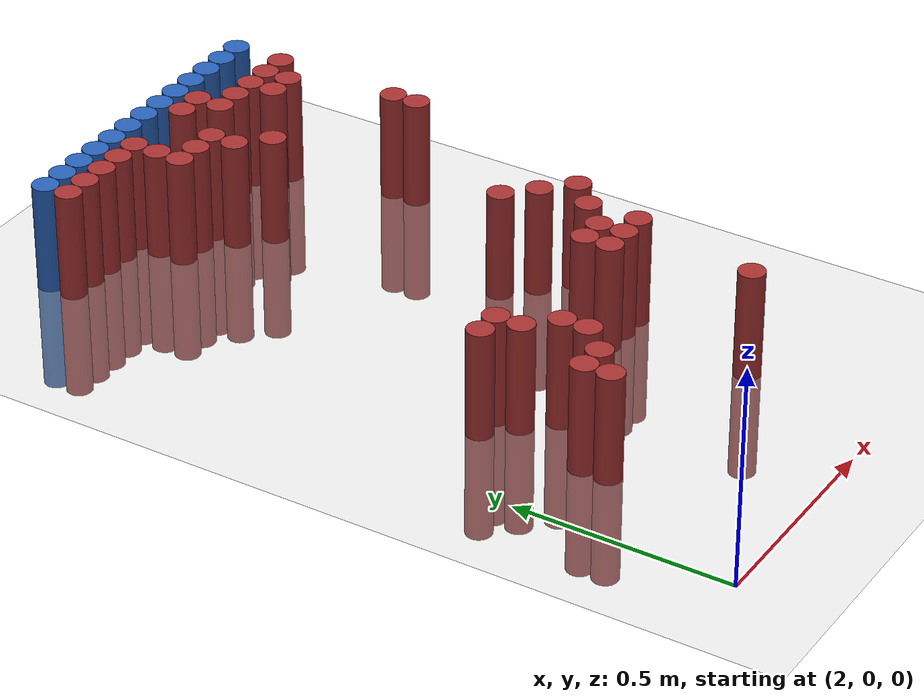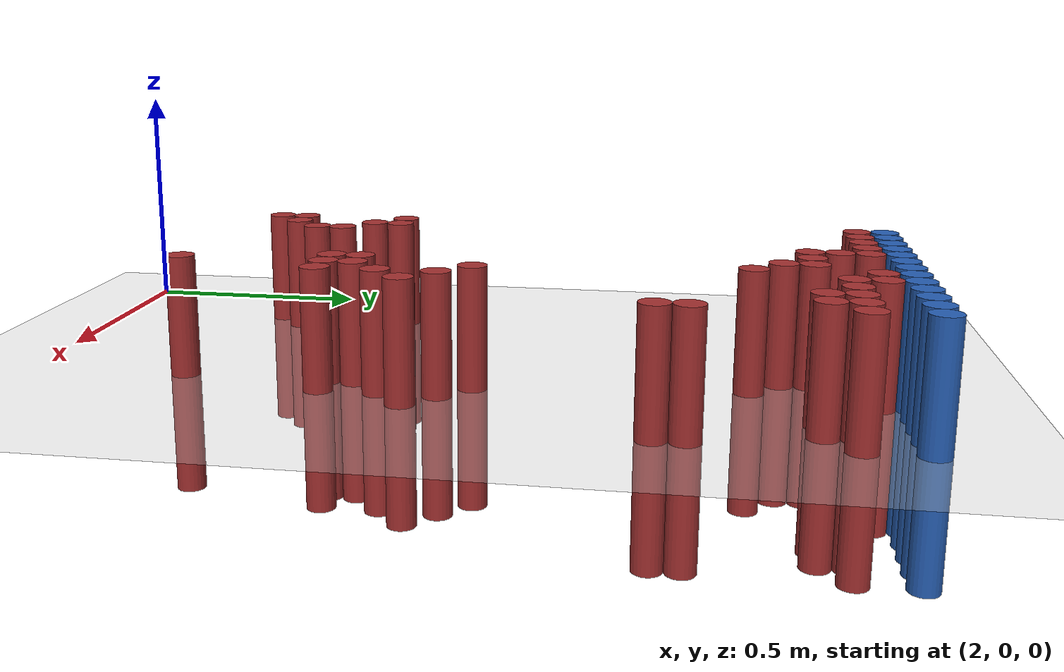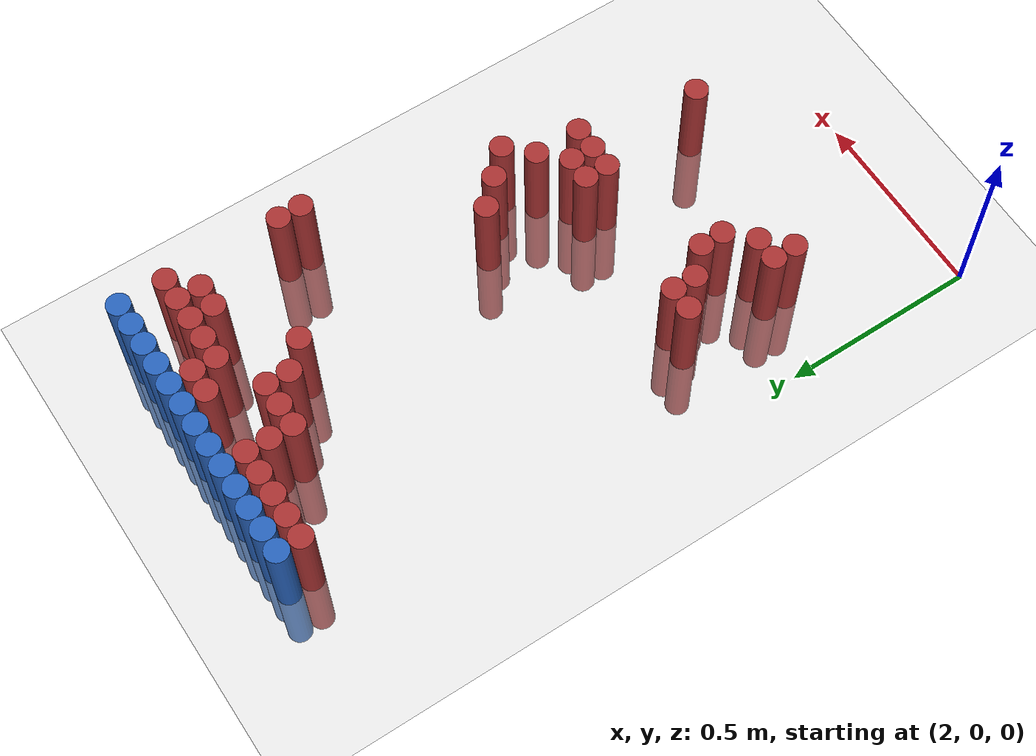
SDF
<sdf version="1.6">
 <world name="default">
  <model name="ground_plane">
   <static>1</static>
   <link name="link">
    <collision name="collision">
     <geometry><plane><normal>0 0 1</normal><size>100 100</size></plane></geometry>
     <surface><friction><ode><mu>100</mu><mu2>50</mu2></ode></friction></surface>
    </collision>
    <visual name="visual">
     <cast_shadows>0</cast_shadows>
     <geometry><plane><normal>0 0 1</normal><size>100 100</size></plane></geometry>
     <material>
      <script><uri>file://media/materials/scripts/gazebo.material</uri><name>Gazebo/Grey</name></script>
     </material>
    </visual>
   </link>
  </model>
  <model name="unit_cylinder_97">
   <static>1</static>
   <pose>2.190000 1.770000 0.000000 0.000000 0.000000 0.000000</pose>
   <link name="link">
    <inertial>
     <mass>1</mass>
     <inertia><ixx>0.145833</ixx><ixy>0</ixy><ixz>0</ixz><iyy>0.145833</iyy><iyz>0</iyz><izz>0.125</izz></inertia>
    </inertial>
    <collision name="collision">
     <geometry><cylinder><radius>0.030000</radius><length>0.5</length></cylinder></geometry>
    </collision>
    <visual name="visual">
     <geometry><cylinder><radius>0.030000</radius><length>0.5</length></cylinder></geometry>
     <material>
      <ambient>0.152000 0.379000 0.720000 1</ambient>
      <diffuse>0.152000 0.379000 0.720000 1</diffuse>
     </material>
     <material>
      <script><name>Gazebo/Grey</name><uri>file://media/materials/scripts/gazebo.material</uri></script>
     </material>
    </visual>
   </link>
  </model>
  <model name="unit_cylinder_98">
   <static>1</static>
   <pose>2.250000 1.770000 0.000000 0.000000 0.000000 0.000000</pose>
   <link name="link">
    <inertial>
     <mass>1</mass>
     <inertia><ixx>0.145833</ixx><ixy>0</ixy><ixz>0</ixz><iyy>0.145833</iyy><iyz>0</iyz><izz>0.125</izz></inertia>
    </inertial>
    <collision name="collision">
     <geometry><cylinder><radius>0.030000</radius><length>0.5</length></cylinder></geometry>
    </collision>
    <visual name="visual">
     <geometry><cylinder><radius>0.030000</radius><length>0.5</length></cylinder></geometry>
     <material>
      <ambient>0.152000 0.379000 0.720000 1</ambient>
      <diffuse>0.152000 0.379000 0.720000 1</diffuse>
     </material>
     <material>
      <script><name>Gazebo/Grey</name><uri>file://media/materials/scripts/gazebo.material</uri></script>
     </material>
    </visual>
   </link>
  </model>
  <model name="unit_cylinder_99">
   <static>1</static>
   <pose>2.310000 1.770000 0.000000 0.000000 0.000000 0.000000</pose>
   <link name="link">
    <inertial>
     <mass>1</mass>
     <inertia><ixx>0.145833</ixx><ixy>0</ixy><ixz>0</ixz><iyy>0.145833</iyy><iyz>0</iyz><izz>0.125</izz></inertia>
    </inertial>
    <collision name="collision">
     <geometry><cylinder><radius>0.030000</radius><length>0.5</length></cylinder></geometry>
    </collision>
    <visual name="visual">
     <geometry><cylinder><radius>0.030000</radius><length>0.5</length></cylinder></geometry>
     <material>
      <ambient>0.152000 0.379000 0.720000 1</ambient>
      <diffuse>0.152000 0.379000 0.720000 1</diffuse>
     </material>
     <material>
      <script><name>Gazebo/Grey</name><uri>file://media/materials/scripts/gazebo.material</uri></script>
     </material>
    </visual>
   </link>
  </model>
  <model name="unit_cylinder_100">
   <static>1</static>
   <pose>2.370000 1.770000 0.000000 0.000000 0.000000 0.000000</pose>
   <link name="link">
    <inertial>
     <mass>1</mass>
     <inertia><ixx>0.145833</ixx><ixy>0</ixy><ixz>0</ixz><iyy>0.145833</iyy><iyz>0</iyz><izz>0.125</izz></inertia>
    </inertial>
    <collision name="collision">
     <geometry><cylinder><radius>0.030000</radius><length>0.5</length></cylinder></geometry>
    </collision>
    <visual name="visual">
     <geometry><cylinder><radius>0.030000</radius><length>0.5</length></cylinder></geometry>
     <material>
      <ambient>0.152000 0.379000 0.720000 1</ambient>
      <diffuse>0.152000 0.379000 0.720000 1</diffuse>
     </material>
     <material>
      <script><name>Gazebo/Grey</name><uri>file://media/materials/scripts/gazebo.material</uri></script>
     </material>
    </visual>
   </link>
  </model>
  <model name="unit_cylinder_101">
   <static>1</static>
   <pose>2.430000 1.770000 0.000000 0.000000 0.000000 0.000000</pose>
   <link name="link">
    <inertial>
     <mass>1</mass>
     <inertia><ixx>0.145833</ixx><ixy>0</ixy><ixz>0</ixz><iyy>0.145833</iyy><iyz>0</iyz><izz>0.125</izz></inertia>
    </inertial>
    <collision name="collision">
     <geometry><cylinder><radius>0.030000</radius><length>0.5</length></cylinder></geometry>
    </collision>
    <visual name="visual">
     <geometry><cylinder><radius>0.030000</radius><length>0.5</length></cylinder></geometry>
     <material>
      <ambient>0.152000 0.379000 0.720000 1</ambient>
      <diffuse>0.152000 0.379000 0.720000 1</diffuse>
     </material>
     <material>
      <script><name>Gazebo/Grey</name><uri>file://media/materials/scripts/gazebo.material</uri></script>
     </material>
    </visual>
   </link>
  </model>
  <model name="unit_cylinder_102">
   <static>1</static>
   <pose>2.490000 1.770000 0.000000 0.000000 0.000000 0.000000</pose>
   <link name="link">
    <inertial>
     <mass>1</mass>
     <inertia><ixx>0.145833</ixx><ixy>0</ixy><ixz>0</ixz><iyy>0.145833</iyy><iyz>0</iyz><izz>0.125</izz></inertia>
    </inertial>
    <collision name="collision">
     <geometry><cylinder><radius>0.030000</radius><length>0.5</length></cylinder></geometry>
    </collision>
    <visual name="visual">
     <geometry><cylinder><radius>0.030000</radius><length>0.5</length></cylinder></geometry>
     <material>
      <ambient>0.152000 0.379000 0.720000 1</ambient>
      <diffuse>0.152000 0.379000 0.720000 1</diffuse>
     </material>
     <material>
      <script><name>Gazebo/Grey</name><uri>file://media/materials/scripts/gazebo.material</uri></script>
     </material>
    </visual>
   </link>
  </model>
  <model name="unit_cylinder_103">
   <static>1</static>
   <pose>2.550000 1.770000 0.000000 0.000000 0.000000 0.000000</pose>
   <link name="link">
    <inertial>
     <mass>1</mass>
     <inertia><ixx>0.145833</ixx><ixy>0</ixy><ixz>0</ixz><iyy>0.145833</iyy><iyz>0</iyz><izz>0.125</izz></inertia>
    </inertial>
    <collision name="collision">
     <geometry><cylinder><radius>0.030000</radius><length>0.5</length></cylinder></geometry>
    </collision>
    <visual name="visual">
     <geometry><cylinder><radius>0.030000</radius><length>0.5</length></cylinder></geometry>
     <material>
      <ambient>0.152000 0.379000 0.720000 1</ambient>
      <diffuse>0.152000 0.379000 0.720000 1</diffuse>
     </material>
     <material>
      <script><name>Gazebo/Grey</name><uri>file://media/materials/scripts/gazebo.material</uri></script>
     </material>
    </visual>
   </link>
  </model>
  <model name="unit_cylinder_104">
   <static>1</static>
   <pose>2.610000 1.770000 0.000000 0.000000 0.000000 0.000000</pose>
   <link name="link">
    <inertial>
     <mass>1</mass>
     <inertia><ixx>0.145833</ixx><ixy>0</ixy><ixz>0</ixz><iyy>0.145833</iyy><iyz>0</iyz><izz>0.125</izz></inertia>
    </inertial>
    <collision name="collision">
     <geometry><cylinder><radius>0.030000</radius><length>0.5</length></cylinder></geometry>
    </collision>
    <visual name="visual">
     <geometry><cylinder><radius>0.030000</radius><length>0.5</length></cylinder></geometry>
     <material>
      <ambient>0.152000 0.379000 0.720000 1</ambient>
      <diffuse>0.152000 0.379000 0.720000 1</diffuse>
     </material>
     <material>
      <script><name>Gazebo/Grey</name><uri>file://media/materials/scripts/gazebo.material</uri></script>
     </material>
    </visual>
   </link>
  </model>
  <model name="unit_cylinder_105">
   <static>1</static>
   <pose>2.670000 1.770000 0.000000 0.000000 0.000000 0.000000</pose>
   <link name="link">
    <inertial>
     <mass>1</mass>
     <inertia><ixx>0.145833</ixx><ixy>0</ixy><ixz>0</ixz><iyy>0.145833</iyy><iyz>0</iyz><izz>0.125</izz></inertia>
    </inertial>
    <collision name="collision">
     <geometry><cylinder><radius>0.030000</radius><length>0.5</length></cylinder></geometry>
    </collision>
    <visual name="visual">
     <geometry><cylinder><radius>0.030000</radius><length>0.5</length></cylinder></geometry>
     <material>
      <ambient>0.152000 0.379000 0.720000 1</ambient>
      <diffuse>0.152000 0.379000 0.720000 1</diffuse>
     </material>
     <material>
      <script><name>Gazebo/Grey</name><uri>file://media/materials/scripts/gazebo.material</uri></script>
     </material>
    </visual>
   </link>
  </model>
  <model name="unit_cylinder_106">
   <static>1</static>
   <pose>2.730000 1.770000 0.000000 0.000000 0.000000 0.000000</pose>
   <link name="link">
    <inertial>
     <mass>1</mass>
     <inertia><ixx>0.145833</ixx><ixy>0</ixy><ixz>0</ixz><iyy>0.145833</iyy><iyz>0</iyz><izz>0.125</izz></inertia>
    </inertial>
    <collision name="collision">
     <geometry><cylinder><radius>0.030000</radius><length>0.5</length></cylinder></geometry>
    </collision>
    <visual name="visual">
     <geometry><cylinder><radius>0.030000</radius><length>0.5</length></cylinder></geometry>
     <material>
      <ambient>0.152000 0.379000 0.720000 1</ambient>
      <diffuse>0.152000 0.379000 0.720000 1</diffuse>
     </material>
     <material>
      <script><name>Gazebo/Grey</name><uri>file://media/materials/scripts/gazebo.material</uri></script>
     </material>
    </visual>
   </link>
  </model>
  <model name="unit_cylinder_107">
   <static>1</static>
   <pose>2.790000 1.770000 0.000000 0.000000 0.000000 0.000000</pose>
   <link name="link">
    <inertial>
     <mass>1</mass>
     <inertia><ixx>0.145833</ixx><ixy>0</ixy><ixz>0</ixz><iyy>0.145833</iyy><iyz>0</iyz><izz>0.125</izz></inertia>
    </inertial>
    <collision name="collision">
     <geometry><cylinder><radius>0.030000</radius><length>0.5</length></cylinder></geometry>
    </collision>
    <visual name="visual">
     <geometry><cylinder><radius>0.030000</radius><length>0.5</length></cylinder></geometry>
     <material>
      <ambient>0.152000 0.379000 0.720000 1</ambient>
      <diffuse>0.152000 0.379000 0.720000 1</diffuse>
     </material>
     <material>
      <script><name>Gazebo/Grey</name><uri>file://media/materials/scripts/gazebo.material</uri></script>
     </material>
    </visual>
   </link>
  </model>
  <model name="unit_cylinder_108">
   <static>1</static>
   <pose>2.850000 1.770000 0.000000 0.000000 0.000000 0.000000</pose>
   <link name="link">
    <inertial>
     <mass>1</mass>
     <inertia><ixx>0.145833</ixx><ixy>0</ixy><ixz>0</ixz><iyy>0.145833</iyy><iyz>0</iyz><izz>0.125</izz></inertia>
    </inertial>
    <collision name="collision">
     <geometry><cylinder><radius>0.030000</radius><length>0.5</length></cylinder></geometry>
    </collision>
    <visual name="visual">
     <geometry><cylinder><radius>0.030000</radius><length>0.5</length></cylinder></geometry>
     <material>
      <ambient>0.152000 0.379000 0.720000 1</ambient>
      <diffuse>0.152000 0.379000 0.720000 1</diffuse>
     </material>
     <material>
      <script><name>Gazebo/Grey</name><uri>file://media/materials/scripts/gazebo.material</uri></script>
     </material>
    </visual>
   </link>
  </model>
  <model name="unit_cylinder_109">
   <static>1</static>
   <pose>2.910000 1.770000 0.000000 0.000000 0.000000 0.000000</pose>
   <link name="link">
    <inertial>
     <mass>1</mass>
     <inertia><ixx>0.145833</ixx><ixy>0</ixy><ixz>0</ixz><iyy>0.145833</iyy><iyz>0</iyz><izz>0.125</izz></inertia>
    </inertial>
    <collision name="collision">
     <geometry><cylinder><radius>0.030000</radius><length>0.5</length></cylinder></geometry>
    </collision>
    <visual name="visual">
     <geometry><cylinder><radius>0.030000</radius><length>0.5</length></cylinder></geometry>
     <material>
      <ambient>0.152000 0.379000 0.720000 1</ambient>
      <diffuse>0.152000 0.379000 0.720000 1</diffuse>
     </material>
     <material>
      <script><name>Gazebo/Grey</name><uri>file://media/materials/scripts/gazebo.material</uri></script>
     </material>
    </visual>
   </link>
  </model>
  <model name="unit_cylinder_127">
   <static>1</static>
   <pose>2.190000 1.710000 0.000000 0.000000 0.000000 0.000000</pose>
   <link name="link">
    <inertial>
     <mass>1</mass>
     <inertia><ixx>0.145833</ixx><ixy>0</ixy><ixz>0</ixz><iyy>0.145833</iyy><iyz>0</iyz><izz>0.125</izz></inertia>
    </inertial>
    <collision name="collision">
     <geometry><cylinder><radius>0.030000</radius><length>0.5</length></cylinder></geometry>
    </collision>
    <visual name="visual">
     <geometry><cylinder><radius>0.030000</radius><length>0.5</length></cylinder></geometry>
     <material>
      <ambient>0.648000 0.192000 0.192000 1</ambient>
      <diffuse>0.648000 0.192000 0.192000 1</diffuse>
     </material>
     <material>
      <script><name>Gazebo/Grey</name><uri>file://media/materials/scripts/gazebo.material</uri></script>
     </material>
    </visual>
   </link>
  </model>
  <model name="unit_cylinder_128">
   <static>1</static>
   <pose>2.250000 1.710000 0.000000 0.000000 0.000000 0.000000</pose>
   <link name="link">
    <inertial>
     <mass>1</mass>
     <inertia><ixx>0.145833</ixx><ixy>0</ixy><ixz>0</ixz><iyy>0.145833</iyy><iyz>0</iyz><izz>0.125</izz></inertia>
    </inertial>
    <collision name="collision">
     <geometry><cylinder><radius>0.030000</radius><length>0.5</length></cylinder></geometry>
    </collision>
    <visual name="visual">
     <geometry><cylinder><radius>0.030000</radius><length>0.5</length></cylinder></geometry>
     <material>
      <ambient>0.648000 0.192000 0.192000 1</ambient>
      <diffuse>0.648000 0.192000 0.192000 1</diffuse>
     </material>
     <material>
      <script><name>Gazebo/Grey</name><uri>file://media/materials/scripts/gazebo.material</uri></script>
     </material>
    </visual>
   </link>
  </model>
  <model name="unit_cylinder_129">
   <static>1</static>
   <pose>2.310000 1.710000 0.000000 0.000000 0.000000 0.000000</pose>
   <link name="link">
    <inertial>
     <mass>1</mass>
     <inertia><ixx>0.145833</ixx><ixy>0</ixy><ixz>0</ixz><iyy>0.145833</iyy><iyz>0</iyz><izz>0.125</izz></inertia>
    </inertial>
    <collision name="collision">
     <geometry><cylinder><radius>0.030000</radius><length>0.5</length></cylinder></geometry>
    </collision>
    <visual name="visual">
     <geometry><cylinder><radius>0.030000</radius><length>0.5</length></cylinder></geometry>
     <material>
      <ambient>0.648000 0.192000 0.192000 1</ambient>
      <diffuse>0.648000 0.192000 0.192000 1</diffuse>
     </material>
     <material>
      <script><name>Gazebo/Grey</name><uri>file://media/materials/scripts/gazebo.material</uri></script>
     </material>
    </visual>
   </link>
  </model>
  <model name="unit_cylinder_130">
   <static>1</static>
   <pose>2.370000 1.710000 0.000000 0.000000 0.000000 0.000000</pose>
   <link name="link">
    <inertial>
     <mass>1</mass>
     <inertia><ixx>0.145833</ixx><ixy>0</ixy><ixz>0</ixz><iyy>0.145833</iyy><iyz>0</iyz><izz>0.125</izz></inertia>
    </inertial>
    <collision name="collision">
     <geometry><cylinder><radius>0.030000</radius><length>0.5</length></cylinder></geometry>
    </collision>
    <visual name="visual">
     <geometry><cylinder><radius>0.030000</radius><length>0.5</length></cylinder></geometry>
     <material>
      <ambient>0.648000 0.192000 0.192000 1</ambient>
      <diffuse>0.648000 0.192000 0.192000 1</diffuse>
     </material>
     <material>
      <script><name>Gazebo/Grey</name><uri>file://media/materials/scripts/gazebo.material</uri></script>
     </material>
    </visual>
   </link>
  </model>
  <model name="unit_cylinder_131">
   <static>1</static>
   <pose>2.430000 1.710000 0.000000 0.000000 0.000000 0.000000</pose>
   <link name="link">
    <inertial>
     <mass>1</mass>
     <inertia><ixx>0.145833</ixx><ixy>0</ixy><ixz>0</ixz><iyy>0.145833</iyy><iyz>0</iyz><izz>0.125</izz></inertia>
    </inertial>
    <collision name="collision">
     <geometry><cylinder><radius>0.030000</radius><length>0.5</length></cylinder></geometry>
    </collision>
    <visual name="visual">
     <geometry><cylinder><radius>0.030000</radius><length>0.5</length></cylinder></geometry>
     <material>
      <ambient>0.648000 0.192000 0.192000 1</ambient>
      <diffuse>0.648000 0.192000 0.192000 1</diffuse>
     </material>
     <material>
      <script><name>Gazebo/Grey</name><uri>file://media/materials/scripts/gazebo.material</uri></script>
     </material>
    </visual>
   </link>
  </model>
  <model name="unit_cylinder_132">
   <static>1</static>
   <pose>2.610000 1.710000 0.000000 0.000000 0.000000 0.000000</pose>
   <link name="link">
    <inertial>
     <mass>1</mass>
     <inertia><ixx>0.145833</ixx><ixy>0</ixy><ixz>0</ixz><iyy>0.145833</iyy><iyz>0</iyz><izz>0.125</izz></inertia>
    </inertial>
    <collision name="collision">
     <geometry><cylinder><radius>0.030000</radius><length>0.5</length></cylinder></geometry>
    </collision>
    <visual name="visual">
     <geometry><cylinder><radius>0.030000</radius><length>0.5</length></cylinder></geometry>
     <material>
      <ambient>0.648000 0.192000 0.192000 1</ambient>
      <diffuse>0.648000 0.192000 0.192000 1</diffuse>
     </material>
     <material>
      <script><name>Gazebo/Grey</name><uri>file://media/materials/scripts/gazebo.material</uri></script>
     </material>
    </visual>
   </link>
  </model>
  <model name="unit_cylinder_133">
   <static>1</static>
   <pose>2.670000 1.710000 0.000000 0.000000 0.000000 0.000000</pose>
   <link name="link">
    <inertial>
     <mass>1</mass>
     <inertia><ixx>0.145833</ixx><ixy>0</ixy><ixz>0</ixz><iyy>0.145833</iyy><iyz>0</iyz><izz>0.125</izz></inertia>
    </inertial>
    <collision name="collision">
     <geometry><cylinder><radius>0.030000</radius><length>0.5</length></cylinder></geometry>
    </collision>
    <visual name="visual">
     <geometry><cylinder><radius>0.030000</radius><length>0.5</length></cylinder></geometry>
     <material>
      <ambient>0.648000 0.192000 0.192000 1</ambient>
      <diffuse>0.648000 0.192000 0.192000 1</diffuse>
     </material>
     <material>
      <script><name>Gazebo/Grey</name><uri>file://media/materials/scripts/gazebo.material</uri></script>
     </material>
    </visual>
   </link>
  </model>
  <model name="unit_cylinder_143">
   <static>1</static>
   <pose>2.430000 1.650000 0.000000 0.000000 0.000000 0.000000</pose>
   <link name="link">
    <inertial>
     <mass>1</mass>
     <inertia><ixx>0.145833</ixx><ixy>0</ixy><ixz>0</ixz><iyy>0.145833</iyy><iyz>0</iyz><izz>0.125</izz></inertia>
    </inertial>
    <collision name="collision">
     <geometry><cylinder><radius>0.030000</radius><length>0.5</length></cylinder></geometry>
    </collision>
    <visual name="visual">
     <geometry><cylinder><radius>0.030000</radius><length>0.5</length></cylinder></geometry>
     <material>
      <ambient>0.648000 0.192000 0.192000 1</ambient>
      <diffuse>0.648000 0.192000 0.192000 1</diffuse>
     </material>
     <material>
      <script><name>Gazebo/Grey</name><uri>file://media/materials/scripts/gazebo.material</uri></script>
     </material>
    </visual>
   </link>
  </model>
  <model name="unit_cylinder_144">
   <static>1</static>
   <pose>2.670000 1.650000 0.000000 0.000000 0.000000 0.000000</pose>
   <link name="link">
    <inertial>
     <mass>1</mass>
     <inertia><ixx>0.145833</ixx><ixy>0</ixy><ixz>0</ixz><iyy>0.145833</iyy><iyz>0</iyz><izz>0.125</izz></inertia>
    </inertial>
    <collision name="collision">
     <geometry><cylinder><radius>0.030000</radius><length>0.5</length></cylinder></geometry>
    </collision>
    <visual name="visual">
     <geometry><cylinder><radius>0.030000</radius><length>0.5</length></cylinder></geometry>
     <material>
      <ambient>0.648000 0.192000 0.192000 1</ambient>
      <diffuse>0.648000 0.192000 0.192000 1</diffuse>
     </material>
     <material>
      <script><name>Gazebo/Grey</name><uri>file://media/materials/scripts/gazebo.material</uri></script>
     </material>
    </visual>
   </link>
  </model>
  <model name="unit_cylinder_145">
   <static>1</static>
   <pose>2.730000 1.650000 0.000000 0.000000 0.000000 0.000000</pose>
   <link name="link">
    <inertial>
     <mass>1</mass>
     <inertia><ixx>0.145833</ixx><ixy>0</ixy><ixz>0</ixz><iyy>0.145833</iyy><iyz>0</iyz><izz>0.125</izz></inertia>
    </inertial>
    <collision name="collision">
     <geometry><cylinder><radius>0.030000</radius><length>0.5</length></cylinder></geometry>
    </collision>
    <visual name="visual">
     <geometry><cylinder><radius>0.030000</radius><length>0.5</length></cylinder></geometry>
     <material>
      <ambient>0.648000 0.192000 0.192000 1</ambient>
      <diffuse>0.648000 0.192000 0.192000 1</diffuse>
     </material>
     <material>
      <script><name>Gazebo/Grey</name><uri>file://media/materials/scripts/gazebo.material</uri></script>
     </material>
    </visual>
   </link>
  </model>
  <model name="unit_cylinder_146">
   <static>1</static>
   <pose>2.790000 1.650000 0.000000 0.000000 0.000000 0.000000</pose>
   <link name="link">
    <inertial>
     <mass>1</mass>
     <inertia><ixx>0.145833</ixx><ixy>0</ixy><ixz>0</ixz><iyy>0.145833</iyy><iyz>0</iyz><izz>0.125</izz></inertia>
    </inertial>
    <collision name="collision">
     <geometry><cylinder><radius>0.030000</radius><length>0.5</length></cylinder></geometry>
    </collision>
    <visual name="visual">
     <geometry><cylinder><radius>0.030000</radius><length>0.5</length></cylinder></geometry>
     <material>
      <ambient>0.648000 0.192000 0.192000 1</ambient>
      <diffuse>0.648000 0.192000 0.192000 1</diffuse>
     </material>
     <material>
      <script><name>Gazebo/Grey</name><uri>file://media/materials/scripts/gazebo.material</uri></script>
     </material>
    </visual>
   </link>
  </model>
  <model name="unit_cylinder_147">
   <static>1</static>
   <pose>2.850000 1.650000 0.000000 0.000000 0.000000 0.000000</pose>
   <link name="link">
    <inertial>
     <mass>1</mass>
     <inertia><ixx>0.145833</ixx><ixy>0</ixy><ixz>0</ixz><iyy>0.145833</iyy><iyz>0</iyz><izz>0.125</izz></inertia>
    </inertial>
    <collision name="collision">
     <geometry><cylinder><radius>0.030000</radius><length>0.5</length></cylinder></geometry>
    </collision>
    <visual name="visual">
     <geometry><cylinder><radius>0.030000</radius><length>0.5</length></cylinder></geometry>
     <material>
      <ambient>0.648000 0.192000 0.192000 1</ambient>
      <diffuse>0.648000 0.192000 0.192000 1</diffuse>
     </material>
     <material>
      <script><name>Gazebo/Grey</name><uri>file://media/materials/scripts/gazebo.material</uri></script>
     </material>
    </visual>
   </link>
  </model>
  <model name="unit_cylinder_148">
   <static>1</static>
   <pose>2.910000 1.650000 0.000000 0.000000 0.000000 0.000000</pose>
   <link name="link">
    <inertial>
     <mass>1</mass>
     <inertia><ixx>0.145833</ixx><ixy>0</ixy><ixz>0</ixz><iyy>0.145833</iyy><iyz>0</iyz><izz>0.125</izz></inertia>
    </inertial>
    <collision name="collision">
     <geometry><cylinder><radius>0.030000</radius><length>0.5</length></cylinder></geometry>
    </collision>
    <visual name="visual">
     <geometry><cylinder><radius>0.030000</radius><length>0.5</length></cylinder></geometry>
     <material>
      <ambient>0.648000 0.192000 0.192000 1</ambient>
      <diffuse>0.648000 0.192000 0.192000 1</diffuse>
     </material>
     <material>
      <script><name>Gazebo/Grey</name><uri>file://media/materials/scripts/gazebo.material</uri></script>
     </material>
    </visual>
   </link>
  </model>
  <model name="unit_cylinder_151">
   <static>1</static>
   <pose>2.430000 1.590000 0.000000 0.000000 0.000000 0.000000</pose>
   <link name="link">
    <inertial>
     <mass>1</mass>
     <inertia><ixx>0.145833</ixx><ixy>0</ixy><ixz>0</ixz><iyy>0.145833</iyy><iyz>0</iyz><izz>0.125</izz></inertia>
    </inertial>
    <collision name="collision">
     <geometry><cylinder><radius>0.030000</radius><length>0.5</length></cylinder></geometry>
    </collision>
    <visual name="visual">
     <geometry><cylinder><radius>0.030000</radius><length>0.5</length></cylinder></geometry>
     <material>
      <ambient>0.648000 0.192000 0.192000 1</ambient>
      <diffuse>0.648000 0.192000 0.192000 1</diffuse>
     </material>
     <material>
      <script><name>Gazebo/Grey</name><uri>file://media/materials/scripts/gazebo.material</uri></script>
     </material>
    </visual>
   </link>
  </model>
  <model name="unit_cylinder_152">
   <static>1</static>
   <pose>2.490000 1.590000 0.000000 0.000000 0.000000 0.000000</pose>
   <link name="link">
    <inertial>
     <mass>1</mass>
     <inertia><ixx>0.145833</ixx><ixy>0</ixy><ixz>0</ixz><iyy>0.145833</iyy><iyz>0</iyz><izz>0.125</izz></inertia>
    </inertial>
    <collision name="collision">
     <geometry><cylinder><radius>0.030000</radius><length>0.5</length></cylinder></geometry>
    </collision>
    <visual name="visual">
     <geometry><cylinder><radius>0.030000</radius><length>0.5</length></cylinder></geometry>
     <material>
      <ambient>0.648000 0.192000 0.192000 1</ambient>
      <diffuse>0.648000 0.192000 0.192000 1</diffuse>
     </material>
     <material>
      <script><name>Gazebo/Grey</name><uri>file://media/materials/scripts/gazebo.material</uri></script>
     </material>
    </visual>
   </link>
  </model>
  <model name="unit_cylinder_153">
   <static>1</static>
   <pose>2.550000 1.590000 0.000000 0.000000 0.000000 0.000000</pose>
   <link name="link">
    <inertial>
     <mass>1</mass>
     <inertia><ixx>0.145833</ixx><ixy>0</ixy><ixz>0</ixz><iyy>0.145833</iyy><iyz>0</iyz><izz>0.125</izz></inertia>
    </inertial>
    <collision name="collision">
     <geometry><cylinder><radius>0.030000</radius><length>0.5</length></cylinder></geometry>
    </collision>
    <visual name="visual">
     <geometry><cylinder><radius>0.030000</radius><length>0.5</length></cylinder></geometry>
     <material>
      <ambient>0.648000 0.192000 0.192000 1</ambient>
      <diffuse>0.648000 0.192000 0.192000 1</diffuse>
     </material>
     <material>
      <script><name>Gazebo/Grey</name><uri>file://media/materials/scripts/gazebo.material</uri></script>
     </material>
    </visual>
   </link>
  </model>
  <model name="unit_cylinder_154">
   <static>1</static>
   <pose>2.790000 1.590000 0.000000 0.000000 0.000000 0.000000</pose>
   <link name="link">
    <inertial>
     <mass>1</mass>
     <inertia><ixx>0.145833</ixx><ixy>0</ixy><ixz>0</ixz><iyy>0.145833</iyy><iyz>0</iyz><izz>0.125</izz></inertia>
    </inertial>
    <collision name="collision">
     <geometry><cylinder><radius>0.030000</radius><length>0.5</length></cylinder></geometry>
    </collision>
    <visual name="visual">
     <geometry><cylinder><radius>0.030000</radius><length>0.5</length></cylinder></geometry>
     <material>
      <ambient>0.648000 0.192000 0.192000 1</ambient>
      <diffuse>0.648000 0.192000 0.192000 1</diffuse>
     </material>
     <material>
      <script><name>Gazebo/Grey</name><uri>file://media/materials/scripts/gazebo.material</uri></script>
     </material>
    </visual>
   </link>
  </model>
  <model name="unit_cylinder_155">
   <static>1</static>
   <pose>2.850000 1.590000 0.000000 0.000000 0.000000 0.000000</pose>
   <link name="link">
    <inertial>
     <mass>1</mass>
     <inertia><ixx>0.145833</ixx><ixy>0</ixy><ixz>0</ixz><iyy>0.145833</iyy><iyz>0</iyz><izz>0.125</izz></inertia>
    </inertial>
    <collision name="collision">
     <geometry><cylinder><radius>0.030000</radius><length>0.5</length></cylinder></geometry>
    </collision>
    <visual name="visual">
     <geometry><cylinder><radius>0.030000</radius><length>0.5</length></cylinder></geometry>
     <material>
      <ambient>0.648000 0.192000 0.192000 1</ambient>
      <diffuse>0.648000 0.192000 0.192000 1</diffuse>
     </material>
     <material>
      <script><name>Gazebo/Grey</name><uri>file://media/materials/scripts/gazebo.material</uri></script>
     </material>
    </visual>
   </link>
  </model>
  <model name="unit_cylinder_158">
   <static>1</static>
   <pose>2.550000 1.530000 0.000000 0.000000 0.000000 0.000000</pose>
   <link name="link">
    <inertial>
     <mass>1</mass>
     <inertia><ixx>0.145833</ixx><ixy>0</ixy><ixz>0</ixz><iyy>0.145833</iyy><iyz>0</iyz><izz>0.125</izz></inertia>
    </inertial>
    <collision name="collision">
     <geometry><cylinder><radius>0.030000</radius><length>0.5</length></cylinder></geometry>
    </collision>
    <visual name="visual">
     <geometry><cylinder><radius>0.030000</radius><length>0.5</length></cylinder></geometry>
     <material>
      <ambient>0.648000 0.192000 0.192000 1</ambient>
      <diffuse>0.648000 0.192000 0.192000 1</diffuse>
     </material>
     <material>
      <script><name>Gazebo/Grey</name><uri>file://media/materials/scripts/gazebo.material</uri></script>
     </material>
    </visual>
   </link>
  </model>
  <model name="unit_cylinder_163">
   <static>1</static>
   <pose>2.610000 1.470000 0.000000 0.000000 0.000000 0.000000</pose>
   <link name="link">
    <inertial>
     <mass>1</mass>
     <inertia><ixx>0.145833</ixx><ixy>0</ixy><ixz>0</ixz><iyy>0.145833</iyy><iyz>0</iyz><izz>0.125</izz></inertia>
    </inertial>
    <collision name="collision">
     <geometry><cylinder><radius>0.030000</radius><length>0.5</length></cylinder></geometry>
    </collision>
    <visual name="visual">
     <geometry><cylinder><radius>0.030000</radius><length>0.5</length></cylinder></geometry>
     <material>
      <ambient>0.648000 0.192000 0.192000 1</ambient>
      <diffuse>0.648000 0.192000 0.192000 1</diffuse>
     </material>
     <material>
      <script><name>Gazebo/Grey</name><uri>file://media/materials/scripts/gazebo.material</uri></script>
     </material>
    </visual>
   </link>
  </model>
  <model name="unit_cylinder_168">
   <static>1</static>
   <pose>2.910000 1.350000 0.000000 0.000000 0.000000 0.000000</pose>
   <link name="link">
    <inertial>
     <mass>1</mass>
     <inertia><ixx>0.145833</ixx><ixy>0</ixy><ixz>0</ixz><iyy>0.145833</iyy><iyz>0</iyz><izz>0.125</izz></inertia>
    </inertial>
    <collision name="collision">
     <geometry><cylinder><radius>0.030000</radius><length>0.5</length></cylinder></geometry>
    </collision>
    <visual name="visual">
     <geometry><cylinder><radius>0.030000</radius><length>0.5</length></cylinder></geometry>
     <material>
      <ambient>0.648000 0.192000 0.192000 1</ambient>
      <diffuse>0.648000 0.192000 0.192000 1</diffuse>
     </material>
     <material>
      <script><name>Gazebo/Grey</name><uri>file://media/materials/scripts/gazebo.material</uri></script>
     </material>
    </visual>
   </link>
  </model>
  <model name="unit_cylinder_171">
   <static>1</static>
   <pose>2.910000 1.290000 0.000000 0.000000 0.000000 0.000000</pose>
   <link name="link">
    <inertial>
     <mass>1</mass>
     <inertia><ixx>0.145833</ixx><ixy>0</ixy><ixz>0</ixz><iyy>0.145833</iyy><iyz>0</iyz><izz>0.125</izz></inertia>
    </inertial>
    <collision name="collision">
     <geometry><cylinder><radius>0.030000</radius><length>0.5</length></cylinder></geometry>
    </collision>
    <visual name="visual">
     <geometry><cylinder><radius>0.030000</radius><length>0.5</length></cylinder></geometry>
     <material>
      <ambient>0.648000 0.192000 0.192000 1</ambient>
      <diffuse>0.648000 0.192000 0.192000 1</diffuse>
     </material>
     <material>
      <script><name>Gazebo/Grey</name><uri>file://media/materials/scripts/gazebo.material</uri></script>
     </material>
    </visual>
   </link>
  </model>
  <model name="unit_cylinder_175">
   <static>1</static>
   <pose>2.670000 0.930000 0.000000 0.000000 0.000000 0.000000</pose>
   <link name="link">
    <inertial>
     <mass>1</mass>
     <inertia><ixx>0.145833</ixx><ixy>0</ixy><ixz>0</ixz><iyy>0.145833</iyy><iyz>0</iyz><izz>0.125</izz></inertia>
    </inertial>
    <collision name="collision">
     <geometry><cylinder><radius>0.030000</radius><length>0.5</length></cylinder></geometry>
    </collision>
    <visual name="visual">
     <geometry><cylinder><radius>0.030000</radius><length>0.5</length></cylinder></geometry>
     <material>
      <ambient>0.648000 0.192000 0.192000 1</ambient>
      <diffuse>0.648000 0.192000 0.192000 1</diffuse>
     </material>
     <material>
      <script><name>Gazebo/Grey</name><uri>file://media/materials/scripts/gazebo.material</uri></script>
     </material>
    </visual>
   </link>
  </model>
  <model name="unit_cylinder_176">
   <static>1</static>
   <pose>2.730000 0.870000 0.000000 0.000000 0.000000 0.000000</pose>
   <link name="link">
    <inertial>
     <mass>1</mass>
     <inertia><ixx>0.145833</ixx><ixy>0</ixy><ixz>0</ixz><iyy>0.145833</iyy><iyz>0</iyz><izz>0.125</izz></inertia>
    </inertial>
    <collision name="collision">
     <geometry><cylinder><radius>0.030000</radius><length>0.5</length></cylinder></geometry>
    </collision>
    <visual name="visual">
     <geometry><cylinder><radius>0.030000</radius><length>0.5</length></cylinder></geometry>
     <material>
      <ambient>0.648000 0.192000 0.192000 1</ambient>
      <diffuse>0.648000 0.192000 0.192000 1</diffuse>
     </material>
     <material>
      <script><name>Gazebo/Grey</name><uri>file://media/materials/scripts/gazebo.material</uri></script>
     </material>
    </visual>
   </link>
  </model>
  <model name="unit_cylinder_178">
   <static>1</static>
   <pose>2.790000 0.810000 0.000000 0.000000 0.000000 0.000000</pose>
   <link name="link">
    <inertial>
     <mass>1</mass>
     <inertia><ixx>0.145833</ixx><ixy>0</ixy><ixz>0</ixz><iyy>0.145833</iyy><iyz>0</iyz><izz>0.125</izz></inertia>
    </inertial>
    <collision name="collision">
     <geometry><cylinder><radius>0.030000</radius><length>0.5</length></cylinder></geometry>
    </collision>
    <visual name="visual">
     <geometry><cylinder><radius>0.030000</radius><length>0.5</length></cylinder></geometry>
     <material>
      <ambient>0.648000 0.192000 0.192000 1</ambient>
      <diffuse>0.648000 0.192000 0.192000 1</diffuse>
     </material>
     <material>
      <script><name>Gazebo/Grey</name><uri>file://media/materials/scripts/gazebo.material</uri></script>
     </material>
    </visual>
   </link>
  </model>
  <model name="unit_cylinder_184">
   <static>1</static>
   <pose>2.730000 0.750000 0.000000 0.000000 0.000000 0.000000</pose>
   <link name="link">
    <inertial>
     <mass>1</mass>
     <inertia><ixx>0.145833</ixx><ixy>0</ixy><ixz>0</ixz><iyy>0.145833</iyy><iyz>0</iyz><izz>0.125</izz></inertia>
    </inertial>
    <collision name="collision">
     <geometry><cylinder><radius>0.030000</radius><length>0.5</length></cylinder></geometry>
    </collision>
    <visual name="visual">
     <geometry><cylinder><radius>0.030000</radius><length>0.5</length></cylinder></geometry>
     <material>
      <ambient>0.648000 0.192000 0.192000 1</ambient>
      <diffuse>0.648000 0.192000 0.192000 1</diffuse>
     </material>
     <material>
      <script><name>Gazebo/Grey</name><uri>file://media/materials/scripts/gazebo.material</uri></script>
     </material>
    </visual>
   </link>
  </model>
  <model name="unit_cylinder_186">
   <static>1</static>
   <pose>2.190000 0.690000 0.000000 0.000000 0.000000 0.000000</pose>
   <link name="link">
    <inertial>
     <mass>1</mass>
     <inertia><ixx>0.145833</ixx><ixy>0</ixy><ixz>0</ixz><iyy>0.145833</iyy><iyz>0</iyz><izz>0.125</izz></inertia>
    </inertial>
    <collision name="collision">
     <geometry><cylinder><radius>0.030000</radius><length>0.5</length></cylinder></geometry>
    </collision>
    <visual name="visual">
     <geometry><cylinder><radius>0.030000</radius><length>0.5</length></cylinder></geometry>
     <material>
      <ambient>0.648000 0.192000 0.192000 1</ambient>
      <diffuse>0.648000 0.192000 0.192000 1</diffuse>
     </material>
     <material>
      <script><name>Gazebo/Grey</name><uri>file://media/materials/scripts/gazebo.material</uri></script>
     </material>
    </visual>
   </link>
  </model>
  <model name="unit_cylinder_187">
   <static>1</static>
   <pose>2.250000 0.690000 0.000000 0.000000 0.000000 0.000000</pose>
   <link name="link">
    <inertial>
     <mass>1</mass>
     <inertia><ixx>0.145833</ixx><ixy>0</ixy><ixz>0</ixz><iyy>0.145833</iyy><iyz>0</iyz><izz>0.125</izz></inertia>
    </inertial>
    <collision name="collision">
     <geometry><cylinder><radius>0.030000</radius><length>0.5</length></cylinder></geometry>
    </collision>
    <visual name="visual">
     <geometry><cylinder><radius>0.030000</radius><length>0.5</length></cylinder></geometry>
     <material>
      <ambient>0.648000 0.192000 0.192000 1</ambient>
      <diffuse>0.648000 0.192000 0.192000 1</diffuse>
     </material>
     <material>
      <script><name>Gazebo/Grey</name><uri>file://media/materials/scripts/gazebo.material</uri></script>
     </material>
    </visual>
   </link>
  </model>
  <model name="unit_cylinder_188">
   <static>1</static>
   <pose>2.610000 0.690000 0.000000 0.000000 0.000000 0.000000</pose>
   <link name="link">
    <inertial>
     <mass>1</mass>
     <inertia><ixx>0.145833</ixx><ixy>0</ixy><ixz>0</ixz><iyy>0.145833</iyy><iyz>0</iyz><izz>0.125</izz></inertia>
    </inertial>
    <collision name="collision">
     <geometry><cylinder><radius>0.030000</radius><length>0.5</length></cylinder></geometry>
    </collision>
    <visual name="visual">
     <geometry><cylinder><radius>0.030000</radius><length>0.5</length></cylinder></geometry>
     <material>
      <ambient>0.648000 0.192000 0.192000 1</ambient>
      <diffuse>0.648000 0.192000 0.192000 1</diffuse>
     </material>
     <material>
      <script><name>Gazebo/Grey</name><uri>file://media/materials/scripts/gazebo.material</uri></script>
     </material>
    </visual>
   </link>
  </model>
  <model name="unit_cylinder_189">
   <static>1</static>
   <pose>2.670000 0.690000 0.000000 0.000000 0.000000 0.000000</pose>
   <link name="link">
    <inertial>
     <mass>1</mass>
     <inertia><ixx>0.145833</ixx><ixy>0</ixy><ixz>0</ixz><iyy>0.145833</iyy><iyz>0</iyz><izz>0.125</izz></inertia>
    </inertial>
    <collision name="collision">
     <geometry><cylinder><radius>0.030000</radius><length>0.5</length></cylinder></geometry>
    </collision>
    <visual name="visual">
     <geometry><cylinder><radius>0.030000</radius><length>0.5</length></cylinder></geometry>
     <material>
      <ambient>0.648000 0.192000 0.192000 1</ambient>
      <diffuse>0.648000 0.192000 0.192000 1</diffuse>
     </material>
     <material>
      <script><name>Gazebo/Grey</name><uri>file://media/materials/scripts/gazebo.material</uri></script>
     </material>
    </visual>
   </link>
  </model>
  <model name="unit_cylinder_190">
   <static>1</static>
   <pose>2.250000 0.630000 0.000000 0.000000 0.000000 0.000000</pose>
   <link name="link">
    <inertial>
     <mass>1</mass>
     <inertia><ixx>0.145833</ixx><ixy>0</ixy><ixz>0</ixz><iyy>0.145833</iyy><iyz>0</iyz><izz>0.125</izz></inertia>
    </inertial>
    <collision name="collision">
     <geometry><cylinder><radius>0.030000</radius><length>0.5</length></cylinder></geometry>
    </collision>
    <visual name="visual">
     <geometry><cylinder><radius>0.030000</radius><length>0.5</length></cylinder></geometry>
     <material>
      <ambient>0.648000 0.192000 0.192000 1</ambient>
      <diffuse>0.648000 0.192000 0.192000 1</diffuse>
     </material>
     <material>
      <script><name>Gazebo/Grey</name><uri>file://media/materials/scripts/gazebo.material</uri></script>
     </material>
    </visual>
   </link>
  </model>
  <model name="unit_cylinder_191">
   <static>1</static>
   <pose>2.610000 0.630000 0.000000 0.000000 0.000000 0.000000</pose>
   <link name="link">
    <inertial>
     <mass>1</mass>
     <inertia><ixx>0.145833</ixx><ixy>0</ixy><ixz>0</ixz><iyy>0.145833</iyy><iyz>0</iyz><izz>0.125</izz></inertia>
    </inertial>
    <collision name="collision">
     <geometry><cylinder><radius>0.030000</radius><length>0.5</length></cylinder></geometry>
    </collision>
    <visual name="visual">
     <geometry><cylinder><radius>0.030000</radius><length>0.5</length></cylinder></geometry>
     <material>
      <ambient>0.648000 0.192000 0.192000 1</ambient>
      <diffuse>0.648000 0.192000 0.192000 1</diffuse>
     </material>
     <material>
      <script><name>Gazebo/Grey</name><uri>file://media/materials/scripts/gazebo.material</uri></script>
     </material>
    </visual>
   </link>
  </model>
  <model name="unit_cylinder_192">
   <static>1</static>
   <pose>2.670000 0.630000 0.000000 0.000000 0.000000 0.000000</pose>
   <link name="link">
    <inertial>
     <mass>1</mass>
     <inertia><ixx>0.145833</ixx><ixy>0</ixy><ixz>0</ixz><iyy>0.145833</iyy><iyz>0</iyz><izz>0.125</izz></inertia>
    </inertial>
    <collision name="collision">
     <geometry><cylinder><radius>0.030000</radius><length>0.5</length></cylinder></geometry>
    </collision>
    <visual name="visual">
     <geometry><cylinder><radius>0.030000</radius><length>0.5</length></cylinder></geometry>
     <material>
      <ambient>0.648000 0.192000 0.192000 1</ambient>
      <diffuse>0.648000 0.192000 0.192000 1</diffuse>
     </material>
     <material>
      <script><name>Gazebo/Grey</name><uri>file://media/materials/scripts/gazebo.material</uri></script>
     </material>
    </visual>
   </link>
  </model>
  <model name="unit_cylinder_193">
   <static>1</static>
   <pose>2.730000 0.630000 0.000000 0.000000 0.000000 0.000000</pose>
   <link name="link">
    <inertial>
     <mass>1</mass>
     <inertia><ixx>0.145833</ixx><ixy>0</ixy><ixz>0</ixz><iyy>0.145833</iyy><iyz>0</iyz><izz>0.125</izz></inertia>
    </inertial>
    <collision name="collision">
     <geometry><cylinder><radius>0.030000</radius><length>0.5</length></cylinder></geometry>
    </collision>
    <visual name="visual">
     <geometry><cylinder><radius>0.030000</radius><length>0.5</length></cylinder></geometry>
     <material>
      <ambient>0.648000 0.192000 0.192000 1</ambient>
      <diffuse>0.648000 0.192000 0.192000 1</diffuse>
     </material>
     <material>
      <script><name>Gazebo/Grey</name><uri>file://media/materials/scripts/gazebo.material</uri></script>
     </material>
    </visual>
   </link>
  </model>
  <model name="unit_cylinder_194">
   <static>1</static>
   <pose>2.310000 0.570000 0.000000 0.000000 0.000000 0.000000</pose>
   <link name="link">
    <inertial>
     <mass>1</mass>
     <inertia><ixx>0.145833</ixx><ixy>0</ixy><ixz>0</ixz><iyy>0.145833</iyy><iyz>0</iyz><izz>0.125</izz></inertia>
    </inertial>
    <collision name="collision">
     <geometry><cylinder><radius>0.030000</radius><length>0.5</length></cylinder></geometry>
    </collision>
    <visual name="visual">
     <geometry><cylinder><radius>0.030000</radius><length>0.5</length></cylinder></geometry>
     <material>
      <ambient>0.648000 0.192000 0.192000 1</ambient>
      <diffuse>0.648000 0.192000 0.192000 1</diffuse>
     </material>
     <material>
      <script><name>Gazebo/Grey</name><uri>file://media/materials/scripts/gazebo.material</uri></script>
     </material>
    </visual>
   </link>
  </model>
  <model name="unit_cylinder_196">
   <static>1</static>
   <pose>2.310000 0.510000 0.000000 0.000000 0.000000 0.000000</pose>
   <link name="link">
    <inertial>
     <mass>1</mass>
     <inertia><ixx>0.145833</ixx><ixy>0</ixy><ixz>0</ixz><iyy>0.145833</iyy><iyz>0</iyz><izz>0.125</izz></inertia>
    </inertial>
    <collision name="collision">
     <geometry><cylinder><radius>0.030000</radius><length>0.5</length></cylinder></geometry>
    </collision>
    <visual name="visual">
     <geometry><cylinder><radius>0.030000</radius><length>0.5</length></cylinder></geometry>
     <material>
      <ambient>0.648000 0.192000 0.192000 1</ambient>
      <diffuse>0.648000 0.192000 0.192000 1</diffuse>
     </material>
     <material>
      <script><name>Gazebo/Grey</name><uri>file://media/materials/scripts/gazebo.material</uri></script>
     </material>
    </visual>
   </link>
  </model>
  <model name="unit_cylinder_199">
   <static>1</static>
   <pose>2.190000 0.450000 0.000000 0.000000 0.000000 0.000000</pose>
   <link name="link">
    <inertial>
     <mass>1</mass>
     <inertia><ixx>0.145833</ixx><ixy>0</ixy><ixz>0</ixz><iyy>0.145833</iyy><iyz>0</iyz><izz>0.125</izz></inertia>
    </inertial>
    <collision name="collision">
     <geometry><cylinder><radius>0.030000</radius><length>0.5</length></cylinder></geometry>
    </collision>
    <visual name="visual">
     <geometry><cylinder><radius>0.030000</radius><length>0.5</length></cylinder></geometry>
     <material>
      <ambient>0.648000 0.192000 0.192000 1</ambient>
      <diffuse>0.648000 0.192000 0.192000 1</diffuse>
     </material>
     <material>
      <script><name>Gazebo/Grey</name><uri>file://media/materials/scripts/gazebo.material</uri></script>
     </material>
    </visual>
   </link>
  </model>
  <model name="unit_cylinder_200">
   <static>1</static>
   <pose>2.250000 0.450000 0.000000 0.000000 0.000000 0.000000</pose>
   <link name="link">
    <inertial>
     <mass>1</mass>
     <inertia><ixx>0.145833</ixx><ixy>0</ixy><ixz>0</ixz><iyy>0.145833</iyy><iyz>0</iyz><izz>0.125</izz></inertia>
    </inertial>
    <collision name="collision">
     <geometry><cylinder><radius>0.030000</radius><length>0.5</length></cylinder></geometry>
    </collision>
    <visual name="visual">
     <geometry><cylinder><radius>0.030000</radius><length>0.5</length></cylinder></geometry>
     <material>
      <ambient>0.648000 0.192000 0.192000 1</ambient>
      <diffuse>0.648000 0.192000 0.192000 1</diffuse>
     </material>
     <material>
      <script><name>Gazebo/Grey</name><uri>file://media/materials/scripts/gazebo.material</uri></script>
     </material>
    </visual>
   </link>
  </model>
  <model name="unit_cylinder_202">
   <static>1</static>
   <pose>2.190000 0.390000 0.000000 0.000000 0.000000 0.000000</pose>
   <link name="link">
    <inertial>
     <mass>1</mass>
     <inertia><ixx>0.145833</ixx><ixy>0</ixy><ixz>0</ixz><iyy>0.145833</iyy><iyz>0</iyz><izz>0.125</izz></inertia>
    </inertial>
    <collision name="collision">
     <geometry><cylinder><radius>0.030000</radius><length>0.5</length></cylinder></geometry>
    </collision>
    <visual name="visual">
     <geometry><cylinder><radius>0.030000</radius><length>0.5</length></cylinder></geometry>
     <material>
      <ambient>0.648000 0.192000 0.192000 1</ambient>
      <diffuse>0.648000 0.192000 0.192000 1</diffuse>
     </material>
     <material>
      <script><name>Gazebo/Grey</name><uri>file://media/materials/scripts/gazebo.material</uri></script>
     </material>
    </visual>
   </link>
  </model>
  <model name="unit_cylinder_210">
   <static>1</static>
   <pose>2.670000 0.330000 0.000000 0.000000 0.000000 0.000000</pose>
   <link name="link">
    <inertial>
     <mass>1</mass>
     <inertia><ixx>0.145833</ixx><ixy>0</ixy><ixz>0</ixz><iyy>0.145833</iyy><iyz>0</iyz><izz>0.125</izz></inertia>
    </inertial>
    <collision name="collision">
     <geometry><cylinder><radius>0.030000</radius><length>0.5</length></cylinder></geometry>
    </collision>
    <visual name="visual">
     <geometry><cylinder><radius>0.030000</radius><length>0.5</length></cylinder></geometry>
     <material>
      <ambient>0.648000 0.192000 0.192000 1</ambient>
      <diffuse>0.648000 0.192000 0.192000 1</diffuse>
     </material>
     <material>
      <script><name>Gazebo/Grey</name><uri>file://media/materials/scripts/gazebo.material</uri></script>
     </material>
    </visual>
   </link>
  </model>
 </world>
</sdf>
